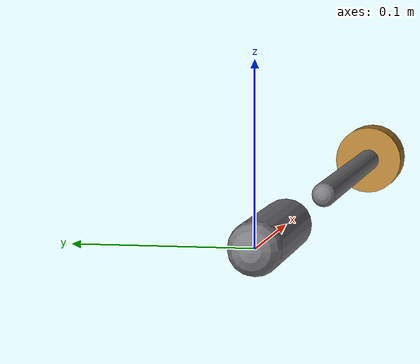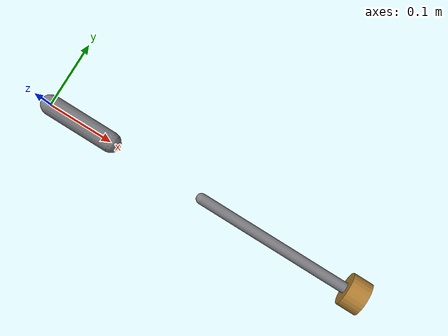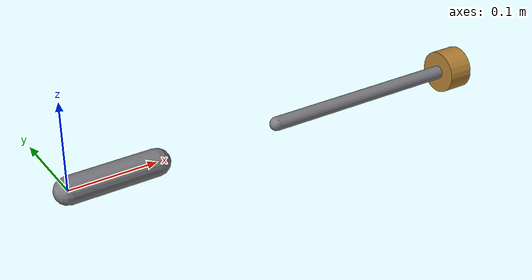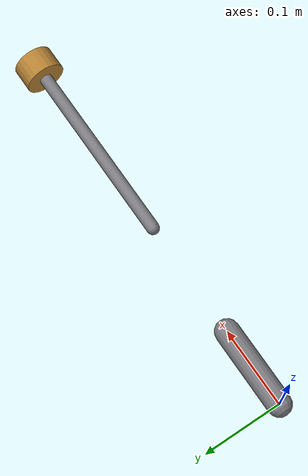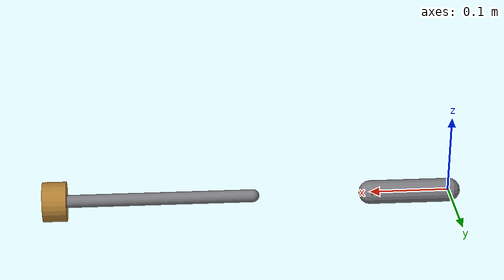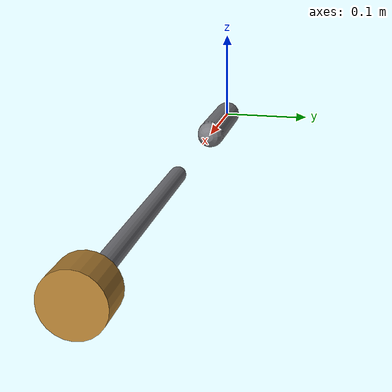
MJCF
<mujoco model="slider-crank">
  <compiler angle="radian"/>
  <option gravity="0 0 0" timestep="0.001" integrator="RK4"/>

  <default>
    <geom contype="0" conaffinity="0"/>
  </default>

  <worldbody>
    <!-- Crank: rotates about Y. High armature stores flywheel energy. -->
    <body name="crank" pos="0 0 0">
      <joint name="crank_joint" type="hinge" axis="0 1 0"
             armature="0.05" damping="0.3"/>
      <inertial pos="0.05 0 0" mass="1.0" diaginertia="0.003 0.003 0.003"/>
      <geom name="crank_arm" type="capsule" size="0.015"
            fromto="0 0 0  0.1 0 0" rgba="0.48 0.48 0.50 1"/>
      <site name="crank_pin" pos="0.1 0 0"/>
    </body>

    <!-- Piston: translates along X, driven by servo to follow crank kinematics.
         Long piston rod keeps the wrist pin outside the cylinder housing. -->
    <body name="slider_body" pos="0.50 0 0">
      <joint name="slider_joint" type="slide" axis="1 0 0"
             armature="0.01" damping="0.5"/>
      <inertial pos="0 0 0" mass="1.0" diaginertia="0.001 0.001 0.001"/>
      <geom name="piston_rod" type="capsule" size="0.008"
            fromto="-0.25 0 0  0 0 0" rgba="0.48 0.48 0.50 1"/>
      <geom name="piston_head" type="cylinder" size="0.025"
            fromto="-0.015 0 0  0.015 0 0" rgba="0.7 0.5 0.2 1"/>
      <!-- Wrist pin at rod end — connecting rod attaches here, outside housing -->
      <site name="slider_pin" pos="-0.25 0 0" euler="0 1.5708 0"/>
    </body>
  </worldbody>

  <actuator>
    <!-- Motor keeps the crank spinning at steady speed -->
    <motor name="spin_motor" joint="crank_joint" gear="1"/>
    <!-- Servo drives piston along kinematic curve (simulates rod constraint) -->
    <position name="slider_servo" joint="slider_joint" kp="200" dampratio="1"/>
    <!-- Slider-crank transmission: computes moment arm + applies linkage force -->
    <general name="linkage" cranksite="crank_pin" slidersite="slider_pin"
             cranklength="0.2" gainprm="3" gear="1"/>
  </actuator>

  <sensor>
    <actuatorfrc name="linkage_force" actuator="linkage"/>
    <jointpos name="crank_angle" joint="crank_joint"/>
    <jointpos name="slider_pos" joint="slider_joint"/>
  </sensor>
</mujoco>
